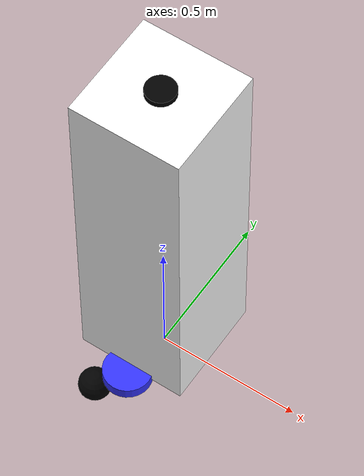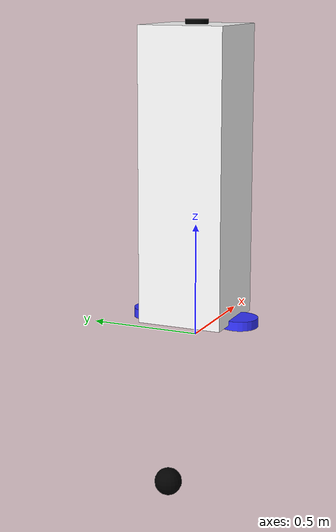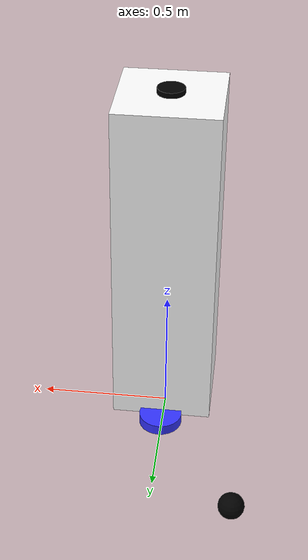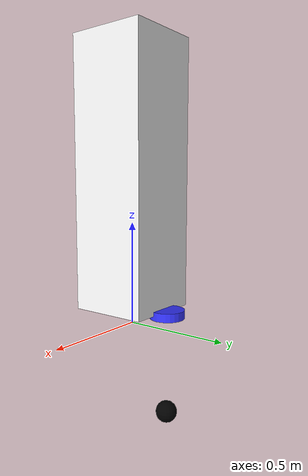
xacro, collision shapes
<?xml version="1.0"?>
<robot xmlns:xacro="http://www.ros.org/wiki/xacro" name="mobile_robot">

    <xacro:include filename="materials.xacro" />
    <xacro:include filename="gazebo_control.xacro" />

    <xacro:property name="chassis_length" value="0.38"/>
    <xacro:property name="chassis_width" value="0.38"/>
    <xacro:property name="chassis_height" value="01.28577"/>
    <xacro:property name="chassis_mass" value="25.0"/>

    <xacro:property name="wheel_radius" value="0.08255"/>
    <xacro:property name="wheel_width" value="0.04109"/>
    <xacro:property name="wheel_mass" value="1.5"/>

    <xacro:property name="wheel_offset_y" value="${(chassis_width / 2) + (wheel_width / 2)}"/>

    <xacro:property name="caster_radius" value="0.06"/>
    <xacro:property name="caster_mass" value="0.5"/>

    <link name="base_link"></link>
    <link name="base_footprint"/>

    <joint name="base_joint" type="fixed">
        <parent link="base_footprint"/>
        <child link="base_link"/>
        <origin xyz="0 0 ${wheel_radius}" rpy="0 0 0"/>
    </joint>

    <joint name="chassis_joint" type="fixed">
        <parent link="base_link"/>
        <child link="chassis"/>
        <origin xyz="0 0 0" rpy="0 0 0"/>
    </joint>

    <link name="chassis">
        <visual>
            <origin xyz="0 0 0" rpy="0 0 0"/>
            <geometry>
                <mesh filename="package://mobile_robot/meshes/Model.stl" scale="0.01 0.01 0.01"/>
            </geometry>
            <material name="white"/>
        </visual>
        <collision>
            <origin xyz="0 0 ${chassis_height/2}" rpy="0 0 0"/>
            <geometry>
                <box size="${chassis_length} ${chassis_width} ${chassis_height}"/>
            </geometry>
        </collision>
        <xacro:inertial_box mass="${chassis_mass}" x="${chassis_length}" y="${chassis_width}" z="${chassis_height}">
            <origin xyz="0 0 ${chassis_height/2}" rpy="0 0 0"/>
        </xacro:inertial_box>
    </link>

    <joint name="left_wheel_joint" type="continuous">
        <parent link="base_link"/>
        <child link="left_wheel"/>
        <origin xyz="0 ${wheel_offset_y} 0" rpy="0 0 0"/>
        <axis xyz="0 0 1"/>
    </joint>

    <link name="left_wheel">
        <visual>
            <origin xyz="0 0 0" rpy="0 0 0"/>
            <geometry>
                <mesh filename="package://mobile_robot/meshes/wheel_left.stl" scale="0.01 0.01 0.01"/>
            </geometry>
            <material name="blue"/>
        </visual>
        <collision>
            <geometry>
                <cylinder radius="${wheel_radius}" length="${wheel_width}"/>
            </geometry>
        </collision>
        <xacro:inertial_cylinder mass="${wheel_mass}" length="${wheel_width}" radius="${wheel_radius}">
            <origin xyz="0 0 0" rpy="0 0 0"/>
        </xacro:inertial_cylinder>
    </link>

    <joint name="right_wheel_joint" type="continuous">
        <parent link="base_link"/>
        <child link="right_wheel"/>
        <origin xyz="0 -${wheel_offset_y} 0" rpy="0 0 0"/>
        <axis xyz="0 0 -1"/>
    </joint>

    <link name="right_wheel">
        <visual>
            <origin xyz="0 0 0" rpy="0 0 0"/>
            <geometry>
                <mesh filename="package://mobile_robot/meshes/wheel_right.stl" scale="0.01 0.01 0.01"/>
            </geometry>
            <material name="blue"/>
        </visual>
        <collision>
            <geometry>
                <cylinder radius="${wheel_radius}" length="${wheel_width}"/>
            </geometry>
        </collision>
        <xacro:inertial_cylinder mass="${wheel_mass}" length="${wheel_width}" radius="${wheel_radius}">
            <origin xyz="0 0 0" rpy="0 0 0"/>
        </xacro:inertial_cylinder>
    </link>

    <joint name="caster_wheel_joint" type="fixed">
        <parent link="chassis"/>
        <child link="caster_wheel"/>
        <origin xyz="-0.3 0 -${chassis_height/2}" rpy="0 0 0"/>
    </joint>

    <link name="caster_wheel">
        <visual>
            <origin xyz="0 0 0" rpy="0 0 0"/>
            <geometry>
                <mesh filename="package://mobile_robot/meshes/caster_wheel.stl" scale="0.01 0.01 0.01"/>
            </geometry>
            <material name="black"/>
        </visual>
        <collision>
            <origin xyz="0 0 ${-caster_radius/2}" rpy="0 0 0"/>
            <geometry>
                <sphere radius="${caster_radius}"/>
            </geometry>
        </collision>
        <xacro:inertial_sphere mass="${caster_mass}" radius="${caster_radius}">
            <origin xyz="0 0 0" rpy="0 0 0"/>
        </xacro:inertial_sphere>
    </link>

    <joint name="laser_joint" type="fixed">
        <parent link="chassis"/>
        <child link="laser_frame"/>
        <origin xyz="0 0 ${chassis_height}" rpy="0 0 0"/>
    </joint>

    <link name="laser_frame">
        <visual>
            <geometry>
                <cylinder radius="0.05" length="0.04"/>
            </geometry>
            <material name="black"/>
        </visual>
        <collision>
            <geometry>
                <cylinder radius="0.05" length="0.04"/>
            </geometry>
        </collision>
        <xacro:inertial_cylinder mass="0.1" length="0.04" radius="0.05">
            <origin xyz="0 0 0" rpy="0 0 0"/>
        </xacro:inertial_cylinder>
    </link>

</robot>

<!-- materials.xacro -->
<robot xmlns:xacro="http://www.ros.org/wiki/xacro">

    <material name="white">
        <color rgba="1 1 1 1"/>
    </material>

    <material name="orange">
        <color rgba="1 0.3 0.1 1"/>
    </material>

    <material name="blue">
        <color rgba="0.2 0.2 1 1"/>
    </material>

    <material name="black">
        <color rgba="0 0 0 1"/>
    </material>

    <xacro:macro name="inertial_box" params="mass x y z *origin">
        <inertial>
            <xacro:insert_block name="origin"/>
            <mass value="${mass}" />
            <inertia ixx="${(1/12) * mass * (y*y+z*z)}" ixy="0.0" ixz="0.0"
                    iyy="${(1/12) * mass * (x*x+z*z)}" iyz="0.0"
                    izz="${(1/12) * mass * (x*x+y*y)}" />
        </inertial>
    </xacro:macro>

    <xacro:macro name="inertial_cylinder" params="mass length radius *origin">
        <inertial>
            <xacro:insert_block name="origin"/>
            <mass value="${mass}" />
            <inertia ixx="${(1/12) * mass * (3*radius*radius + length*length)}" ixy="0.0" ixz="0.0"
                    iyy="${(1/12) * mass * (3*radius*radius + length*length)}" iyz="0.0"
                    izz="${(1/2) * mass * (radius*radius)}" />
        </inertial>
    </xacro:macro>

    <xacro:macro name="inertial_sphere" params="mass radius *origin">
        <inertial>
            <xacro:insert_block name="origin"/>
            <mass value="${mass}" />
            <inertia ixx="${(2/5) * mass * (radius*radius)}" ixy="0.0" ixz="0.0"
                    iyy="${(2/5) * mass * (radius*radius)}" iyz="0.0"
                    izz="${(2/5) * mass * (radius*radius)}" />
        </inertial>
    </xacro:macro>
</robot>
